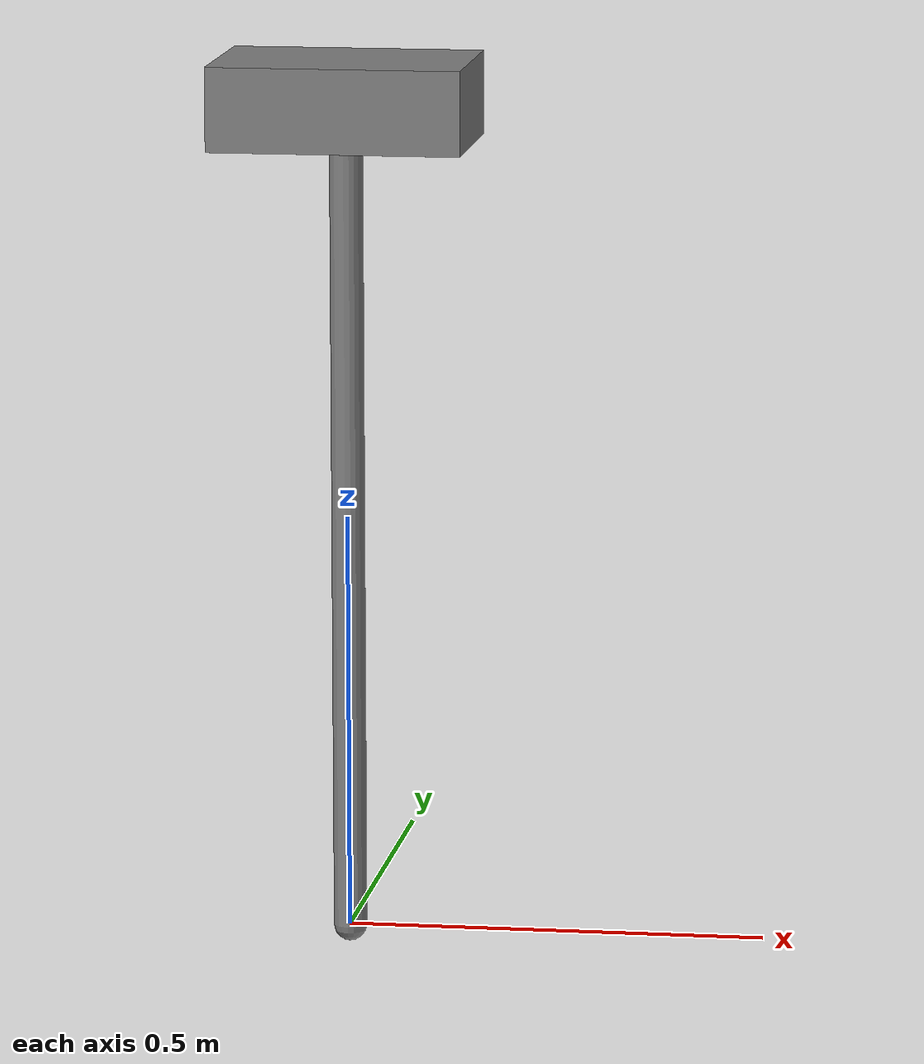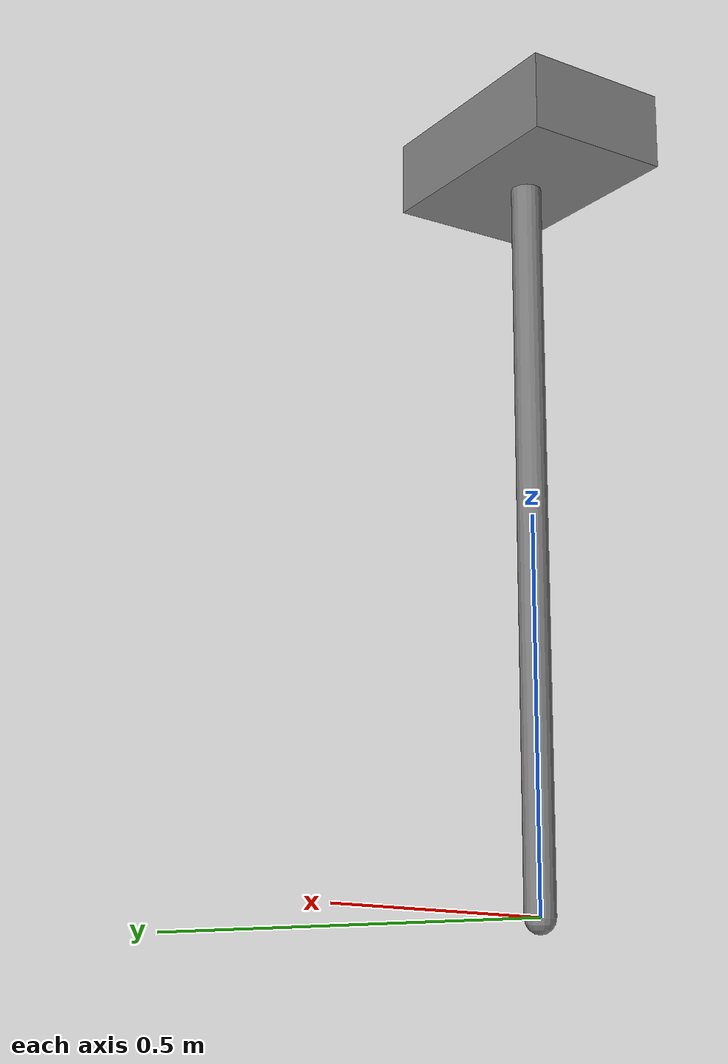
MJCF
<mujoco model="cartpole_hanging_light">
  <!-- A cart free to slide along x, with a uniform-rod pole hanging BELOW it on a hinge.
       Explicit inertial blocks make the conversion unambiguous. Units: m, kg, s; z is up. -->
  <option gravity="0 0 -9.81" timestep="0.001"/>
  <worldbody>
    <body name="cart" pos="0 0 1">
      <joint name="slide_x" type="slide" axis="1 0 0"/>
      <inertial pos="0 0 0" mass="0.5" diaginertia="0.05 0.05 0.05"/>
      <geom name="cart_box" type="box" size="0.15 0.10 0.05"/>
      <body name="pole" pos="0 0 0">
        <joint name="hinge_y" type="hinge" axis="0 1 0" pos="0 0 0"/>
        <inertial pos="0 0 -0.5" mass="0.5" diaginertia="0.0416667 0.0416667 0.0001"/>
        <geom name="pole_rod" type="capsule" fromto="0 0 0  0 0 -1" size="0.02"/>
      </body>
    </body>
  </worldbody>
</mujoco>
